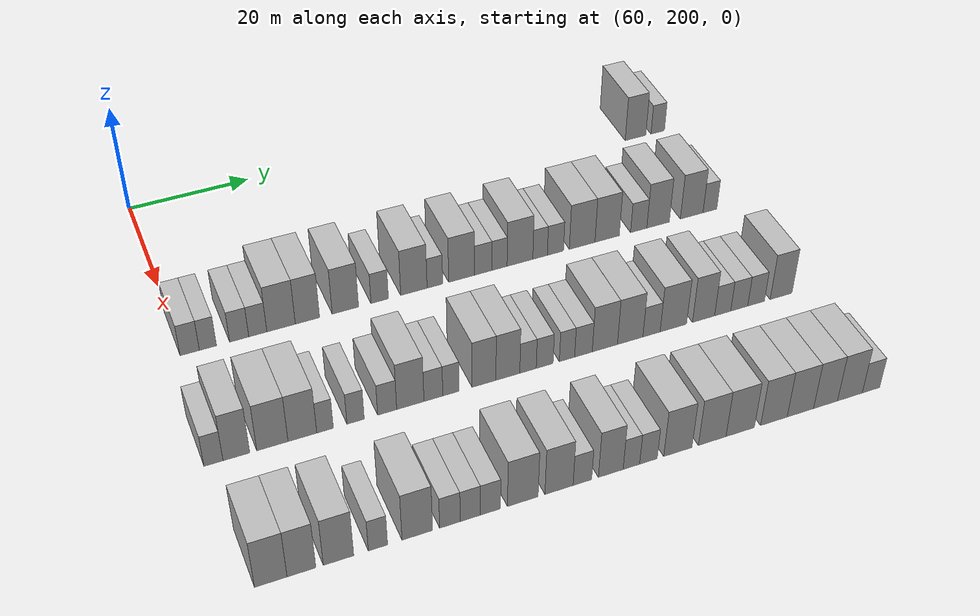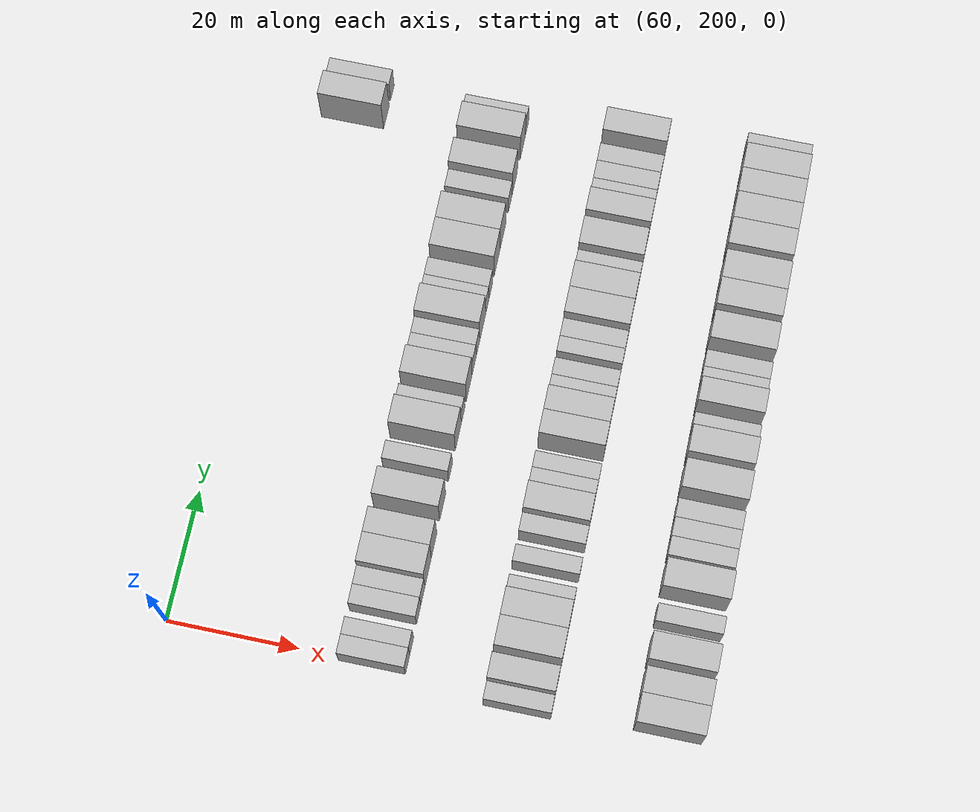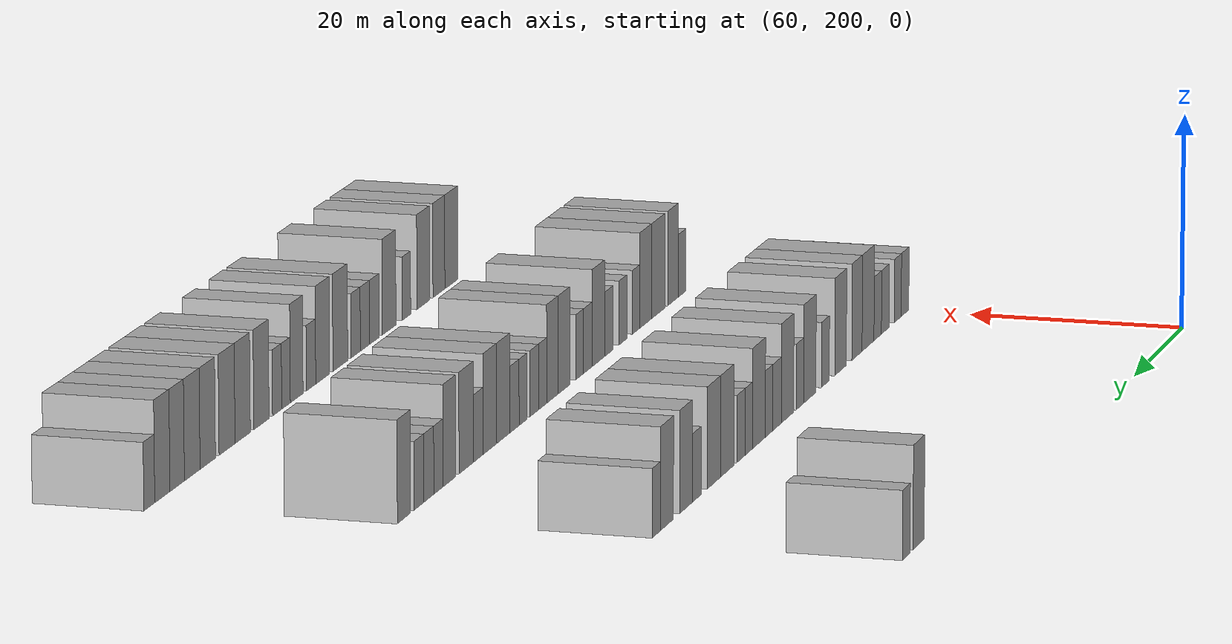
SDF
<sdf version="1.6">
 <world name="default">
  <model name="building_559">
   <static>1</static>
   <pose>69.0000 284.7594 0 0.000000 0.000000 0.000000</pose>
   <link name="link">
    <pose>0 0 4.50 0 0 0</pose>
    <collision name="collision"><geometry><box><size>10.0000 3.9321 9.0000</size></box></geometry></collision>
    <visual name="visual">
     <cast_shadows>0</cast_shadows>
     <geometry><box><size>10.0000 3.9321 9.0000</size></box></geometry>
     <material>
      <script>
       <uri>model://HANNAS_wall/materials/scripts</uri>
       <uri>model://HANNAS_wall/materials/textures</uri>
       <name>vrc/HANNAS_wall</name>
      </script>
     </material>
    </visual>
   </link>
  </model>
  <model name="building_560">
   <static>1</static>
   <pose>69.0000 289.0182 0 0.000000 0.000000 0.000000</pose>
   <link name="link">
    <pose>0 0 3.00 0 0 0</pose>
    <collision name="collision"><geometry><box><size>10.0000 2.5855 6.0000</size></box></geometry></collision>
    <visual name="visual">
     <cast_shadows>0</cast_shadows>
     <geometry><box><size>10.0000 2.5855 6.0000</size></box></geometry>
     <material>
      <script>
       <uri>model://HANNAS_wall/materials/scripts</uri>
       <uri>model://HANNAS_wall/materials/textures</uri>
       <name>vrc/HANNAS_wall</name>
      </script>
     </material>
    </visual>
   </link>
  </model>
  <model name="building_737">
   <static>1</static>
   <pose>91.0000 201.0022 0 0.000000 0.000000 0.000000</pose>
   <link name="link">
    <pose>0 0 3.00 0 0 0</pose>
    <collision name="collision"><geometry><box><size>10.0000 2.9094 6.0000</size></box></geometry></collision>
    <visual name="visual">
     <cast_shadows>0</cast_shadows>
     <geometry><box><size>10.0000 2.9094 6.0000</size></box></geometry>
     <material>
      <script>
       <uri>model://HANNAS_wall/materials/scripts</uri>
       <uri>model://HANNAS_wall/materials/textures</uri>
       <name>vrc/HANNAS_wall</name>
      </script>
     </material>
    </visual>
   </link>
  </model>
  <model name="building_738">
   <static>1</static>
   <pose>91.0000 203.7476 0 0.000000 0.000000 0.000000</pose>
   <link name="link">
    <pose>0 0 3.00 0 0 0</pose>
    <collision name="collision"><geometry><box><size>10.0000 2.5815 6.0000</size></box></geometry></collision>
    <visual name="visual">
     <cast_shadows>0</cast_shadows>
     <geometry><box><size>10.0000 2.5815 6.0000</size></box></geometry>
     <material>
      <script>
       <uri>model://HANNAS_wall/materials/scripts</uri>
       <uri>model://HANNAS_wall/materials/textures</uri>
       <name>vrc/HANNAS_wall</name>
      </script>
     </material>
    </visual>
   </link>
  </model>
  <model name="building_739">
   <static>1</static>
   <pose>91.0000 208.5044 0 0.000000 0.000000 0.000000</pose>
   <link name="link">
    <pose>0 0 3.00 0 0 0</pose>
    <collision name="collision"><geometry><box><size>10.0000 2.9321 6.0000</size></box></geometry></collision>
    <visual name="visual">
     <cast_shadows>0</cast_shadows>
     <geometry><box><size>10.0000 2.9321 6.0000</size></box></geometry>
     <material>
      <script>
       <uri>model://HANNAS_wall/materials/scripts</uri>
       <uri>model://HANNAS_wall/materials/textures</uri>
       <name>vrc/HANNAS_wall</name>
      </script>
     </material>
    </visual>
   </link>
  </model>
  <model name="building_740">
   <static>1</static>
   <pose>91.0000 211.3655 0 0.000000 0.000000 0.000000</pose>
   <link name="link">
    <pose>0 0 3.00 0 0 0</pose>
    <collision name="collision"><geometry><box><size>10.0000 2.7901 6.0000</size></box></geometry></collision>
    <visual name="visual">
     <cast_shadows>0</cast_shadows>
     <geometry><box><size>10.0000 2.7901 6.0000</size></box></geometry>
     <material>
      <script>
       <uri>model://HANNAS_wall/materials/scripts</uri>
       <uri>model://HANNAS_wall/materials/textures</uri>
       <name>vrc/HANNAS_wall</name>
      </script>
     </material>
    </visual>
   </link>
  </model>
  <model name="building_741">
   <static>1</static>
   <pose>91.0000 214.9728 0 0.000000 0.000000 0.000000</pose>
   <link name="link">
    <pose>0 0 4.50 0 0 0</pose>
    <collision name="collision"><geometry><box><size>10.0000 4.4246 9.0000</size></box></geometry></collision>
    <visual name="visual">
     <cast_shadows>0</cast_shadows>
     <geometry><box><size>10.0000 4.4246 9.0000</size></box></geometry>
     <material>
      <script>
       <uri>model://HANNAS_wall/materials/scripts</uri>
       <uri>model://HANNAS_wall/materials/textures</uri>
       <name>vrc/HANNAS_wall</name>
      </script>
     </material>
    </visual>
   </link>
  </model>
  <model name="building_742">
   <static>1</static>
   <pose>91.0000 219.0837 0 0.000000 0.000000 0.000000</pose>
   <link name="link">
    <pose>0 0 4.50 0 0 0</pose>
    <collision name="collision"><geometry><box><size>10.0000 3.7972 9.0000</size></box></geometry></collision>
    <visual name="visual">
     <cast_shadows>0</cast_shadows>
     <geometry><box><size>10.0000 3.7972 9.0000</size></box></geometry>
     <material>
      <script>
       <uri>model://HANNAS_wall/materials/scripts</uri>
       <uri>model://HANNAS_wall/materials/textures</uri>
       <name>vrc/HANNAS_wall</name>
      </script>
     </material>
    </visual>
   </link>
  </model>
  <model name="building_743">
   <static>1</static>
   <pose>91.0000 225.0781 0 0.000000 0.000000 0.000000</pose>
   <link name="link">
    <pose>0 0 4.50 0 0 0</pose>
    <collision name="collision"><geometry><box><size>10.0000 4.1915 9.0000</size></box></geometry></collision>
    <visual name="visual">
     <cast_shadows>0</cast_shadows>
     <geometry><box><size>10.0000 4.1915 9.0000</size></box></geometry>
     <material>
      <script>
       <uri>model://HANNAS_wall/materials/scripts</uri>
       <uri>model://HANNAS_wall/materials/textures</uri>
       <name>vrc/HANNAS_wall</name>
      </script>
     </material>
    </visual>
   </link>
  </model>
  <model name="building_744">
   <static>1</static>
   <pose>91.0000 230.5742 0 0.000000 0.000000 0.000000</pose>
   <link name="link">
    <pose>0 0 3.00 0 0 0</pose>
    <collision name="collision"><geometry><box><size>10.0000 2.8008 6.0000</size></box></geometry></collision>
    <visual name="visual">
     <cast_shadows>0</cast_shadows>
     <geometry><box><size>10.0000 2.8008 6.0000</size></box></geometry>
     <material>
      <script>
       <uri>model://HANNAS_wall/materials/scripts</uri>
       <uri>model://HANNAS_wall/materials/textures</uri>
       <name>vrc/HANNAS_wall</name>
      </script>
     </material>
    </visual>
   </link>
  </model>
  <model name="building_745">
   <static>1</static>
   <pose>91.0000 236.1287 0 0.000000 0.000000 0.000000</pose>
   <link name="link">
    <pose>0 0 4.50 0 0 0</pose>
    <collision name="collision"><geometry><box><size>10.0000 4.3082 9.0000</size></box></geometry></collision>
    <visual name="visual">
     <cast_shadows>0</cast_shadows>
     <geometry><box><size>10.0000 4.3082 9.0000</size></box></geometry>
     <material>
      <script>
       <uri>model://HANNAS_wall/materials/scripts</uri>
       <uri>model://HANNAS_wall/materials/textures</uri>
       <name>vrc/HANNAS_wall</name>
      </script>
     </material>
    </visual>
   </link>
  </model>
  <model name="building_746">
   <static>1</static>
   <pose>91.0000 239.5628 0 0.000000 0.000000 0.000000</pose>
   <link name="link">
    <pose>0 0 3.00 0 0 0</pose>
    <collision name="collision"><geometry><box><size>10.0000 2.5600 6.0000</size></box></geometry></collision>
    <visual name="visual">
     <cast_shadows>0</cast_shadows>
     <geometry><box><size>10.0000 2.5600 6.0000</size></box></geometry>
     <material>
      <script>
       <uri>model://HANNAS_wall/materials/scripts</uri>
       <uri>model://HANNAS_wall/materials/textures</uri>
       <name>vrc/HANNAS_wall</name>
      </script>
     </material>
    </visual>
   </link>
  </model>
  <model name="building_747">
   <static>1</static>
   <pose>91.0000 243.9823 0 0.000000 0.000000 0.000000</pose>
   <link name="link">
    <pose>0 0 4.50 0 0 0</pose>
    <collision name="collision"><geometry><box><size>10.0000 4.2789 9.0000</size></box></geometry></collision>
    <visual name="visual">
     <cast_shadows>0</cast_shadows>
     <geometry><box><size>10.0000 4.2789 9.0000</size></box></geometry>
     <material>
      <script>
       <uri>model://HANNAS_wall/materials/scripts</uri>
       <uri>model://HANNAS_wall/materials/textures</uri>
       <name>vrc/HANNAS_wall</name>
      </script>
     </material>
    </visual>
   </link>
  </model>
  <model name="building_748">
   <static>1</static>
   <pose>91.0000 247.5914 0 0.000000 0.000000 0.000000</pose>
   <link name="link">
    <pose>0 0 3.00 0 0 0</pose>
    <collision name="collision"><geometry><box><size>10.0000 2.9393 6.0000</size></box></geometry></collision>
    <visual name="visual">
     <cast_shadows>0</cast_shadows>
     <geometry><box><size>10.0000 2.9393 6.0000</size></box></geometry>
     <material>
      <script>
       <uri>model://HANNAS_wall/materials/scripts</uri>
       <uri>model://HANNAS_wall/materials/textures</uri>
       <name>vrc/HANNAS_wall</name>
      </script>
     </material>
    </visual>
   </link>
  </model>
  <model name="building_749">
   <static>1</static>
   <pose>91.0000 250.3411 0 0.000000 0.000000 0.000000</pose>
   <link name="link">
    <pose>0 0 3.00 0 0 0</pose>
    <collision name="collision"><geometry><box><size>10.0000 2.5601 6.0000</size></box></geometry></collision>
    <visual name="visual">
     <cast_shadows>0</cast_shadows>
     <geometry><box><size>10.0000 2.5601 6.0000</size></box></geometry>
     <material>
      <script>
       <uri>model://HANNAS_wall/materials/scripts</uri>
       <uri>model://HANNAS_wall/materials/textures</uri>
       <name>vrc/HANNAS_wall</name>
      </script>
     </material>
    </visual>
   </link>
  </model>
  <model name="building_750">
   <static>1</static>
   <pose>91.0000 253.8123 0 0.000000 0.000000 0.000000</pose>
   <link name="link">
    <pose>0 0 4.50 0 0 0</pose>
    <collision name="collision"><geometry><box><size>10.0000 4.3824 9.0000</size></box></geometry></collision>
    <visual name="visual">
     <cast_shadows>0</cast_shadows>
     <geometry><box><size>10.0000 4.3824 9.0000</size></box></geometry>
     <material>
      <script>
       <uri>model://HANNAS_wall/materials/scripts</uri>
       <uri>model://HANNAS_wall/materials/textures</uri>
       <name>vrc/HANNAS_wall</name>
      </script>
     </material>
    </visual>
   </link>
  </model>
  <model name="building_751">
   <static>1</static>
   <pose>91.0000 257.2460 0 0.000000 0.000000 0.000000</pose>
   <link name="link">
    <pose>0 0 3.00 0 0 0</pose>
    <collision name="collision"><geometry><box><size>10.0000 2.4849 6.0000</size></box></geometry></collision>
    <visual name="visual">
     <cast_shadows>0</cast_shadows>
     <geometry><box><size>10.0000 2.4849 6.0000</size></box></geometry>
     <material>
      <script>
       <uri>model://HANNAS_wall/materials/scripts</uri>
       <uri>model://HANNAS_wall/materials/textures</uri>
       <name>vrc/HANNAS_wall</name>
      </script>
     </material>
    </visual>
   </link>
  </model>
  <model name="building_752">
   <static>1</static>
   <pose>91.0000 259.8829 0 0.000000 0.000000 0.000000</pose>
   <link name="link">
    <pose>0 0 3.00 0 0 0</pose>
    <collision name="collision"><geometry><box><size>10.0000 2.7890 6.0000</size></box></geometry></collision>
    <visual name="visual">
     <cast_shadows>0</cast_shadows>
     <geometry><box><size>10.0000 2.7890 6.0000</size></box></geometry>
     <material>
      <script>
       <uri>model://HANNAS_wall/materials/scripts</uri>
       <uri>model://HANNAS_wall/materials/textures</uri>
       <name>vrc/HANNAS_wall</name>
      </script>
     </material>
    </visual>
   </link>
  </model>
  <model name="building_753">
   <static>1</static>
   <pose>91.0000 264.5177 0 0.000000 0.000000 0.000000</pose>
   <link name="link">
    <pose>0 0 4.50 0 0 0</pose>
    <collision name="collision"><geometry><box><size>10.0000 4.4805 9.0000</size></box></geometry></collision>
    <visual name="visual">
     <cast_shadows>0</cast_shadows>
     <geometry><box><size>10.0000 4.4805 9.0000</size></box></geometry>
     <material>
      <script>
       <uri>model://HANNAS_wall/materials/scripts</uri>
       <uri>model://HANNAS_wall/materials/textures</uri>
       <name>vrc/HANNAS_wall</name>
      </script>
     </material>
    </visual>
   </link>
  </model>
  <model name="building_754">
   <static>1</static>
   <pose>91.0000 268.8987 0 0.000000 0.000000 0.000000</pose>
   <link name="link">
    <pose>0 0 4.50 0 0 0</pose>
    <collision name="collision"><geometry><box><size>10.0000 4.2816 9.0000</size></box></geometry></collision>
    <visual name="visual">
     <cast_shadows>0</cast_shadows>
     <geometry><box><size>10.0000 4.2816 9.0000</size></box></geometry>
     <material>
      <script>
       <uri>model://HANNAS_wall/materials/scripts</uri>
       <uri>model://HANNAS_wall/materials/textures</uri>
       <name>vrc/HANNAS_wall</name>
      </script>
     </material>
    </visual>
   </link>
  </model>
  <model name="building_755">
   <static>1</static>
   <pose>91.0000 274.4918 0 0.000000 0.000000 0.000000</pose>
   <link name="link">
    <pose>0 0 3.00 0 0 0</pose>
    <collision name="collision"><geometry><box><size>10.0000 2.9046 6.0000</size></box></geometry></collision>
    <visual name="visual">
     <cast_shadows>0</cast_shadows>
     <geometry><box><size>10.0000 2.9046 6.0000</size></box></geometry>
     <material>
      <script>
       <uri>model://HANNAS_wall/materials/scripts</uri>
       <uri>model://HANNAS_wall/materials/textures</uri>
       <name>vrc/HANNAS_wall</name>
      </script>
     </material>
    </visual>
   </link>
  </model>
  <model name="building_756">
   <static>1</static>
   <pose>91.0000 277.9613 0 0.000000 0.000000 0.000000</pose>
   <link name="link">
    <pose>0 0 4.50 0 0 0</pose>
    <collision name="collision"><geometry><box><size>10.0000 4.0344 9.0000</size></box></geometry></collision>
    <visual name="visual">
     <cast_shadows>0</cast_shadows>
     <geometry><box><size>10.0000 4.0344 9.0000</size></box></geometry>
     <material>
      <script>
       <uri>model://HANNAS_wall/materials/scripts</uri>
       <uri>model://HANNAS_wall/materials/textures</uri>
       <name>vrc/HANNAS_wall</name>
      </script>
     </material>
    </visual>
   </link>
  </model>
  <model name="building_757">
   <static>1</static>
   <pose>91.0000 284.0430 0 0.000000 0.000000 0.000000</pose>
   <link name="link">
    <pose>0 0 4.50 0 0 0</pose>
    <collision name="collision"><geometry><box><size>10.0000 4.1288 9.0000</size></box></geometry></collision>
    <visual name="visual">
     <cast_shadows>0</cast_shadows>
     <geometry><box><size>10.0000 4.1288 9.0000</size></box></geometry>
     <material>
      <script>
       <uri>model://HANNAS_wall/materials/scripts</uri>
       <uri>model://HANNAS_wall/materials/textures</uri>
       <name>vrc/HANNAS_wall</name>
      </script>
     </material>
    </visual>
   </link>
  </model>
  <model name="building_758">
   <static>1</static>
   <pose>91.0000 287.3696 0 0.000000 0.000000 0.000000</pose>
   <link name="link">
    <pose>0 0 3.00 0 0 0</pose>
    <collision name="collision"><geometry><box><size>10.0000 2.5245 6.0000</size></box></geometry></collision>
    <visual name="visual">
     <cast_shadows>0</cast_shadows>
     <geometry><box><size>10.0000 2.5245 6.0000</size></box></geometry>
     <material>
      <script>
       <uri>model://HANNAS_wall/materials/scripts</uri>
       <uri>model://HANNAS_wall/materials/textures</uri>
       <name>vrc/HANNAS_wall</name>
      </script>
     </material>
    </visual>
   </link>
  </model>
  <model name="building_920">
   <static>1</static>
   <pose>113.0000 198.8032 0 0.000000 0.000000 0.000000</pose>
   <link name="link">
    <pose>0 0 3.00 0 0 0</pose>
    <collision name="collision"><geometry><box><size>10.0000 2.6819 6.0000</size></box></geometry></collision>
    <visual name="visual">
     <cast_shadows>0</cast_shadows>
     <geometry><box><size>10.0000 2.6819 6.0000</size></box></geometry>
     <material>
      <script>
       <uri>model://HANNAS_wall/materials/scripts</uri>
       <uri>model://HANNAS_wall/materials/textures</uri>
       <name>vrc/HANNAS_wall</name>
      </script>
     </material>
    </visual>
   </link>
  </model>
  <model name="building_921">
   <static>1</static>
   <pose>113.0000 202.0382 0 0.000000 0.000000 0.000000</pose>
   <link name="link">
    <pose>0 0 4.50 0 0 0</pose>
    <collision name="collision"><geometry><box><size>10.0000 3.7881 9.0000</size></box></geometry></collision>
    <visual name="visual">
     <cast_shadows>0</cast_shadows>
     <geometry><box><size>10.0000 3.7881 9.0000</size></box></geometry>
     <material>
      <script>
       <uri>model://HANNAS_wall/materials/scripts</uri>
       <uri>model://HANNAS_wall/materials/textures</uri>
       <name>vrc/HANNAS_wall</name>
      </script>
     </material>
    </visual>
   </link>
  </model>
  <model name="building_922">
   <static>1</static>
   <pose>113.0000 207.1808 0 0.000000 0.000000 0.000000</pose>
   <link name="link">
    <pose>0 0 4.50 0 0 0</pose>
    <collision name="collision"><geometry><box><size>10.0000 4.4973 9.0000</size></box></geometry></collision>
    <visual name="visual">
     <cast_shadows>0</cast_shadows>
     <geometry><box><size>10.0000 4.4973 9.0000</size></box></geometry>
     <material>
      <script>
       <uri>model://HANNAS_wall/materials/scripts</uri>
       <uri>model://HANNAS_wall/materials/textures</uri>
       <name>vrc/HANNAS_wall</name>
      </script>
     </material>
    </visual>
   </link>
  </model>
  <model name="building_923">
   <static>1</static>
   <pose>113.0000 211.5131 0 0.000000 0.000000 0.000000</pose>
   <link name="link">
    <pose>0 0 4.50 0 0 0</pose>
    <collision name="collision"><geometry><box><size>10.0000 4.1672 9.0000</size></box></geometry></collision>
    <visual name="visual">
     <cast_shadows>0</cast_shadows>
     <geometry><box><size>10.0000 4.1672 9.0000</size></box></geometry>
     <material>
      <script>
       <uri>model://HANNAS_wall/materials/scripts</uri>
       <uri>model://HANNAS_wall/materials/textures</uri>
       <name>vrc/HANNAS_wall</name>
      </script>
     </material>
    </visual>
   </link>
  </model>
  <model name="building_924">
   <static>1</static>
   <pose>113.0000 214.8110 0 0.000000 0.000000 0.000000</pose>
   <link name="link">
    <pose>0 0 3.00 0 0 0</pose>
    <collision name="collision"><geometry><box><size>10.0000 2.4287 6.0000</size></box></geometry></collision>
    <visual name="visual">
     <cast_shadows>0</cast_shadows>
     <geometry><box><size>10.0000 2.4287 6.0000</size></box></geometry>
     <material>
      <script>
       <uri>model://HANNAS_wall/materials/scripts</uri>
       <uri>model://HANNAS_wall/materials/textures</uri>
       <name>vrc/HANNAS_wall</name>
      </script>
     </material>
    </visual>
   </link>
  </model>
  <model name="building_925">
   <static>1</static>
   <pose>113.0000 219.3073 0 0.000000 0.000000 0.000000</pose>
   <link name="link">
    <pose>0 0 3.00 0 0 0</pose>
    <collision name="collision"><geometry><box><size>10.0000 2.5637 6.0000</size></box></geometry></collision>
    <visual name="visual">
     <cast_shadows>0</cast_shadows>
     <geometry><box><size>10.0000 2.5637 6.0000</size></box></geometry>
     <material>
      <script>
       <uri>model://HANNAS_wall/materials/scripts</uri>
       <uri>model://HANNAS_wall/materials/textures</uri>
       <name>vrc/HANNAS_wall</name>
      </script>
     </material>
    </visual>
   </link>
  </model>
  <model name="building_926">
   <static>1</static>
   <pose>113.0000 224.0138 0 0.000000 0.000000 0.000000</pose>
   <link name="link">
    <pose>0 0 3.00 0 0 0</pose>
    <collision name="collision"><geometry><box><size>10.0000 2.8494 6.0000</size></box></geometry></collision>
    <visual name="visual">
     <cast_shadows>0</cast_shadows>
     <geometry><box><size>10.0000 2.8494 6.0000</size></box></geometry>
     <material>
      <script>
       <uri>model://HANNAS_wall/materials/scripts</uri>
       <uri>model://HANNAS_wall/materials/textures</uri>
       <name>vrc/HANNAS_wall</name>
      </script>
     </material>
    </visual>
   </link>
  </model>
  <model name="building_927">
   <static>1</static>
   <pose>113.0000 227.5051 0 0.000000 0.000000 0.000000</pose>
   <link name="link">
    <pose>0 0 4.50 0 0 0</pose>
    <collision name="collision"><geometry><box><size>10.0000 4.1331 9.0000</size></box></geometry></collision>
    <visual name="visual">
     <cast_shadows>0</cast_shadows>
     <geometry><box><size>10.0000 4.1331 9.0000</size></box></geometry>
     <material>
      <script>
       <uri>model://HANNAS_wall/materials/scripts</uri>
       <uri>model://HANNAS_wall/materials/textures</uri>
       <name>vrc/HANNAS_wall</name>
      </script>
     </material>
    </visual>
   </link>
  </model>
  <model name="building_928">
   <static>1</static>
   <pose>113.0000 231.0036 0 0.000000 0.000000 0.000000</pose>
   <link name="link">
    <pose>0 0 3.00 0 0 0</pose>
    <collision name="collision"><geometry><box><size>10.0000 2.8640 6.0000</size></box></geometry></collision>
    <visual name="visual">
     <cast_shadows>0</cast_shadows>
     <geometry><box><size>10.0000 2.8640 6.0000</size></box></geometry>
     <material>
      <script>
       <uri>model://HANNAS_wall/materials/scripts</uri>
       <uri>model://HANNAS_wall/materials/textures</uri>
       <name>vrc/HANNAS_wall</name>
      </script>
     </material>
    </visual>
   </link>
  </model>
  <model name="building_929">
   <static>1</static>
   <pose>113.0000 233.6943 0 0.000000 0.000000 0.000000</pose>
   <link name="link">
    <pose>0 0 3.00 0 0 0</pose>
    <collision name="collision"><geometry><box><size>10.0000 2.5174 6.0000</size></box></geometry></collision>
    <visual name="visual">
     <cast_shadows>0</cast_shadows>
     <geometry><box><size>10.0000 2.5174 6.0000</size></box></geometry>
     <material>
      <script>
       <uri>model://HANNAS_wall/materials/scripts</uri>
       <uri>model://HANNAS_wall/materials/textures</uri>
       <name>vrc/HANNAS_wall</name>
      </script>
     </material>
    </visual>
   </link>
  </model>
  <model name="building_930">
   <static>1</static>
   <pose>113.0000 238.8066 0 0.000000 0.000000 0.000000</pose>
   <link name="link">
    <pose>0 0 4.50 0 0 0</pose>
    <collision name="collision"><geometry><box><size>10.0000 3.7071 9.0000</size></box></geometry></collision>
    <visual name="visual">
     <cast_shadows>0</cast_shadows>
     <geometry><box><size>10.0000 3.7071 9.0000</size></box></geometry>
     <material>
      <script>
       <uri>model://HANNAS_wall/materials/scripts</uri>
       <uri>model://HANNAS_wall/materials/textures</uri>
       <name>vrc/HANNAS_wall</name>
      </script>
     </material>
    </visual>
   </link>
  </model>
  <model name="building_931">
   <static>1</static>
   <pose>113.0000 242.5376 0 0.000000 0.000000 0.000000</pose>
   <link name="link">
    <pose>0 0 4.50 0 0 0</pose>
    <collision name="collision"><geometry><box><size>10.0000 3.7550 9.0000</size></box></geometry></collision>
    <visual name="visual">
     <cast_shadows>0</cast_shadows>
     <geometry><box><size>10.0000 3.7550 9.0000</size></box></geometry>
     <material>
      <script>
       <uri>model://HANNAS_wall/materials/scripts</uri>
       <uri>model://HANNAS_wall/materials/textures</uri>
       <name>vrc/HANNAS_wall</name>
      </script>
     </material>
    </visual>
   </link>
  </model>
  <model name="building_932">
   <static>1</static>
   <pose>113.0000 245.7138 0 0.000000 0.000000 0.000000</pose>
   <link name="link">
    <pose>0 0 3.00 0 0 0</pose>
    <collision name="collision"><geometry><box><size>10.0000 2.5974 6.0000</size></box></geometry></collision>
    <visual name="visual">
     <cast_shadows>0</cast_shadows>
     <geometry><box><size>10.0000 2.5974 6.0000</size></box></geometry>
     <material>
      <script>
       <uri>model://HANNAS_wall/materials/scripts</uri>
       <uri>model://HANNAS_wall/materials/textures</uri>
       <name>vrc/HANNAS_wall</name>
      </script>
     </material>
    </visual>
   </link>
  </model>
  <model name="building_933">
   <static>1</static>
   <pose>113.0000 248.3528 0 0.000000 0.000000 0.000000</pose>
   <link name="link">
    <pose>0 0 3.00 0 0 0</pose>
    <collision name="collision"><geometry><box><size>10.0000 2.6806 6.0000</size></box></geometry></collision>
    <visual name="visual">
     <cast_shadows>0</cast_shadows>
     <geometry><box><size>10.0000 2.6806 6.0000</size></box></geometry>
     <material>
      <script>
       <uri>model://HANNAS_wall/materials/scripts</uri>
       <uri>model://HANNAS_wall/materials/textures</uri>
       <name>vrc/HANNAS_wall</name>
      </script>
     </material>
    </visual>
   </link>
  </model>
  <model name="building_934">
   <static>1</static>
   <pose>113.0000 251.9249 0 0.000000 0.000000 0.000000</pose>
   <link name="link">
    <pose>0 0 3.00 0 0 0</pose>
    <collision name="collision"><geometry><box><size>10.0000 2.4638 6.0000</size></box></geometry></collision>
    <visual name="visual">
     <cast_shadows>0</cast_shadows>
     <geometry><box><size>10.0000 2.4638 6.0000</size></box></geometry>
     <material>
      <script>
       <uri>model://HANNAS_wall/materials/scripts</uri>
       <uri>model://HANNAS_wall/materials/textures</uri>
       <name>vrc/HANNAS_wall</name>
      </script>
     </material>
    </visual>
   </link>
  </model>
  <model name="building_935">
   <static>1</static>
   <pose>113.0000 254.5799 0 0.000000 0.000000 0.000000</pose>
   <link name="link">
    <pose>0 0 3.00 0 0 0</pose>
    <collision name="collision"><geometry><box><size>10.0000 2.8462 6.0000</size></box></geometry></collision>
    <visual name="visual">
     <cast_shadows>0</cast_shadows>
     <geometry><box><size>10.0000 2.8462 6.0000</size></box></geometry>
     <material>
      <script>
       <uri>model://HANNAS_wall/materials/scripts</uri>
       <uri>model://HANNAS_wall/materials/textures</uri>
       <name>vrc/HANNAS_wall</name>
      </script>
     </material>
    </visual>
   </link>
  </model>
  <model name="building_936">
   <static>1</static>
   <pose>113.0000 258.0589 0 0.000000 0.000000 0.000000</pose>
   <link name="link">
    <pose>0 0 4.50 0 0 0</pose>
    <collision name="collision"><geometry><box><size>10.0000 4.1116 9.0000</size></box></geometry></collision>
    <visual name="visual">
     <cast_shadows>0</cast_shadows>
     <geometry><box><size>10.0000 4.1116 9.0000</size></box></geometry>
     <material>
      <script>
       <uri>model://HANNAS_wall/materials/scripts</uri>
       <uri>model://HANNAS_wall/materials/textures</uri>
       <name>vrc/HANNAS_wall</name>
      </script>
     </material>
    </visual>
   </link>
  </model>
  <model name="building_937">
   <static>1</static>
   <pose>113.0000 262.2113 0 0.000000 0.000000 0.000000</pose>
   <link name="link">
    <pose>0 0 4.50 0 0 0</pose>
    <collision name="collision"><geometry><box><size>10.0000 4.1931 9.0000</size></box></geometry></collision>
    <visual name="visual">
     <cast_shadows>0</cast_shadows>
     <geometry><box><size>10.0000 4.1931 9.0000</size></box></geometry>
     <material>
      <script>
       <uri>model://HANNAS_wall/materials/scripts</uri>
       <uri>model://HANNAS_wall/materials/textures</uri>
       <name>vrc/HANNAS_wall</name>
      </script>
     </material>
    </visual>
   </link>
  </model>
  <model name="building_938">
   <static>1</static>
   <pose>113.0000 265.7371 0 0.000000 0.000000 0.000000</pose>
   <link name="link">
    <pose>0 0 3.00 0 0 0</pose>
    <collision name="collision"><geometry><box><size>10.0000 2.8586 6.0000</size></box></geometry></collision>
    <visual name="visual">
     <cast_shadows>0</cast_shadows>
     <geometry><box><size>10.0000 2.8586 6.0000</size></box></geometry>
     <material>
      <script>
       <uri>model://HANNAS_wall/materials/scripts</uri>
       <uri>model://HANNAS_wall/materials/textures</uri>
       <name>vrc/HANNAS_wall</name>
      </script>
     </material>
    </visual>
   </link>
  </model>
  <model name="building_939">
   <static>1</static>
   <pose>113.0000 269.3833 0 0.000000 0.000000 0.000000</pose>
   <link name="link">
    <pose>0 0 4.50 0 0 0</pose>
    <collision name="collision"><geometry><box><size>10.0000 4.4338 9.0000</size></box></geometry></collision>
    <visual name="visual">
     <cast_shadows>0</cast_shadows>
     <geometry><box><size>10.0000 4.4338 9.0000</size></box></geometry>
     <material>
      <script>
       <uri>model://HANNAS_wall/materials/scripts</uri>
       <uri>model://HANNAS_wall/materials/textures</uri>
       <name>vrc/HANNAS_wall</name>
      </script>
     </material>
    </visual>
   </link>
  </model>
  <model name="building_940">
   <static>1</static>
   <pose>113.0000 274.4802 0 0.000000 0.000000 0.000000</pose>
   <link name="link">
    <pose>0 0 4.50 0 0 0</pose>
    <collision name="collision"><geometry><box><size>10.0000 3.7599 9.0000</size></box></geometry></collision>
    <visual name="visual">
     <cast_shadows>0</cast_shadows>
     <geometry><box><size>10.0000 3.7599 9.0000</size></box></geometry>
     <material>
      <script>
       <uri>model://HANNAS_wall/materials/scripts</uri>
       <uri>model://HANNAS_wall/materials/textures</uri>
       <name>vrc/HANNAS_wall</name>
      </script>
     </material>
    </visual>
   </link>
  </model>
  <model name="building_941">
   <static>1</static>
   <pose>113.0000 277.7319 0 0.000000 0.000000 0.000000</pose>
   <link name="link">
    <pose>0 0 3.00 0 0 0</pose>
    <collision name="collision"><geometry><box><size>10.0000 2.7435 6.0000</size></box></geometry></collision>
    <visual name="visual">
     <cast_shadows>0</cast_shadows>
     <geometry><box><size>10.0000 2.7435 6.0000</size></box></geometry>
     <material>
      <script>
       <uri>model://HANNAS_wall/materials/scripts</uri>
       <uri>model://HANNAS_wall/materials/textures</uri>
       <name>vrc/HANNAS_wall</name>
      </script>
     </material>
    </visual>
   </link>
  </model>
  <model name="building_942">
   <static>1</static>
   <pose>113.0000 280.5706 0 0.000000 0.000000 0.000000</pose>
   <link name="link">
    <pose>0 0 3.00 0 0 0</pose>
    <collision name="collision"><geometry><box><size>10.0000 2.9338 6.0000</size></box></geometry></collision>
    <visual name="visual">
     <cast_shadows>0</cast_shadows>
     <geometry><box><size>10.0000 2.9338 6.0000</size></box></geometry>
     <material>
      <script>
       <uri>model://HANNAS_wall/materials/scripts</uri>
       <uri>model://HANNAS_wall/materials/textures</uri>
       <name>vrc/HANNAS_wall</name>
      </script>
     </material>
    </visual>
   </link>
  </model>
  <model name="building_943">
   <static>1</static>
   <pose>113.0000 283.4804 0 0.000000 0.000000 0.000000</pose>
   <link name="link">
    <pose>0 0 3.00 0 0 0</pose>
    <collision name="collision"><geometry><box><size>10.0000 2.8859 6.0000</size></box></geometry></collision>
    <visual name="visual">
     <cast_shadows>0</cast_shadows>
     <geometry><box><size>10.0000 2.8859 6.0000</size></box></geometry>
     <material>
      <script>
       <uri>model://HANNAS_wall/materials/scripts</uri>
       <uri>model://HANNAS_wall/materials/textures</uri>
       <name>vrc/HANNAS_wall</name>
      </script>
     </material>
    </visual>
   </link>
  </model>
  <model name="building_944">
   <static>1</static>
   <pose>113.0000 287.8372 0 0.000000 0.000000 0.000000</pose>
   <link name="link">
    <pose>0 0 4.50 0 0 0</pose>
    <collision name="collision"><geometry><box><size>10.0000 3.8276 9.0000</size></box></geometry></collision>
    <visual name="visual">
     <cast_shadows>0</cast_shadows>
     <geometry><box><size>10.0000 3.8276 9.0000</size></box></geometry>
     <material>
      <script>
       <uri>model://HANNAS_wall/materials/scripts</uri>
       <uri>model://HANNAS_wall/materials/textures</uri>
       <name>vrc/HANNAS_wall</name>
      </script>
     </material>
    </visual>
   </link>
  </model>
  <model name="building_1099">
   <static>1</static>
   <pose>135.0000 200.5108 0 0.000000 0.000000 0.000000</pose>
   <link name="link">
    <pose>0 0 4.50 0 0 0</pose>
    <collision name="collision"><geometry><box><size>10.0000 4.3170 9.0000</size></box></geometry></collision>
    <visual name="visual">
     <cast_shadows>0</cast_shadows>
     <geometry><box><size>10.0000 4.3170 9.0000</size></box></geometry>
     <material>
      <script>
       <uri>model://HANNAS_wall/materials/scripts</uri>
       <uri>model://HANNAS_wall/materials/textures</uri>
       <name>vrc/HANNAS_wall</name>
      </script>
     </material>
    </visual>
   </link>
  </model>
  <model name="building_1100">
   <static>1</static>
   <pose>135.0000 204.5979 0 0.000000 0.000000 0.000000</pose>
   <link name="link">
    <pose>0 0 4.50 0 0 0</pose>
    <collision name="collision"><geometry><box><size>10.0000 3.8573 9.0000</size></box></geometry></collision>
    <visual name="visual">
     <cast_shadows>0</cast_shadows>
     <geometry><box><size>10.0000 3.8573 9.0000</size></box></geometry>
     <material>
      <script>
       <uri>model://HANNAS_wall/materials/scripts</uri>
       <uri>model://HANNAS_wall/materials/textures</uri>
       <name>vrc/HANNAS_wall</name>
      </script>
     </material>
    </visual>
   </link>
  </model>
  <model name="building_1101">
   <static>1</static>
   <pose>135.0000 209.5909 0 0.000000 0.000000 0.000000</pose>
   <link name="link">
    <pose>0 0 4.50 0 0 0</pose>
    <collision name="collision"><geometry><box><size>10.0000 4.1285 9.0000</size></box></geometry></collision>
    <visual name="visual">
     <cast_shadows>0</cast_shadows>
     <geometry><box><size>10.0000 4.1285 9.0000</size></box></geometry>
     <material>
      <script>
       <uri>model://HANNAS_wall/materials/scripts</uri>
       <uri>model://HANNAS_wall/materials/textures</uri>
       <name>vrc/HANNAS_wall</name>
      </script>
     </material>
    </visual>
   </link>
  </model>
  <model name="building_1102">
   <static>1</static>
   <pose>135.0000 214.9796 0 0.000000 0.000000 0.000000</pose>
   <link name="link">
    <pose>0 0 3.00 0 0 0</pose>
    <collision name="collision"><geometry><box><size>10.0000 2.6490 6.0000</size></box></geometry></collision>
    <visual name="visual">
     <cast_shadows>0</cast_shadows>
     <geometry><box><size>10.0000 2.6490 6.0000</size></box></geometry>
     <material>
      <script>
       <uri>model://HANNAS_wall/materials/scripts</uri>
       <uri>model://HANNAS_wall/materials/textures</uri>
       <name>vrc/HANNAS_wall</name>
      </script>
     </material>
    </visual>
   </link>
  </model>
  <model name="building_1103">
   <static>1</static>
   <pose>135.0000 220.4351 0 0.000000 0.000000 0.000000</pose>
   <link name="link">
    <pose>0 0 4.50 0 0 0</pose>
    <collision name="collision"><geometry><box><size>10.0000 4.2619 9.0000</size></box></geometry></collision>
    <visual name="visual">
     <cast_shadows>0</cast_shadows>
     <geometry><box><size>10.0000 4.2619 9.0000</size></box></geometry>
     <material>
      <script>
       <uri>model://HANNAS_wall/materials/scripts</uri>
       <uri>model://HANNAS_wall/materials/textures</uri>
       <name>vrc/HANNAS_wall</name>
      </script>
     </material>
    </visual>
   </link>
  </model>
  <model name="building_1104">
   <static>1</static>
   <pose>135.0000 225.0232 0 0.000000 0.000000 0.000000</pose>
   <link name="link">
    <pose>0 0 3.00 0 0 0</pose>
    <collision name="collision"><geometry><box><size>10.0000 2.9143 6.0000</size></box></geometry></collision>
    <visual name="visual">
     <cast_shadows>0</cast_shadows>
     <geometry><box><size>10.0000 2.9143 6.0000</size></box></geometry>
     <material>
      <script>
       <uri>model://HANNAS_wall/materials/scripts</uri>
       <uri>model://HANNAS_wall/materials/textures</uri>
       <name>vrc/HANNAS_wall</name>
      </script>
     </material>
    </visual>
   </link>
  </model>
  <model name="building_1105">
   <static>1</static>
   <pose>135.0000 227.9264 0 0.000000 0.000000 0.000000</pose>
   <link name="link">
    <pose>0 0 3.00 0 0 0</pose>
    <collision name="collision"><geometry><box><size>10.0000 2.8922 6.0000</size></box></geometry></collision>
    <visual name="visual">
     <cast_shadows>0</cast_shadows>
     <geometry><box><size>10.0000 2.8922 6.0000</size></box></geometry>
     <material>
      <script>
       <uri>model://HANNAS_wall/materials/scripts</uri>
       <uri>model://HANNAS_wall/materials/textures</uri>
       <name>vrc/HANNAS_wall</name>
      </script>
     </material>
    </visual>
   </link>
  </model>
  <model name="building_1106">
   <static>1</static>
   <pose>135.0000 230.8103 0 0.000000 0.000000 0.000000</pose>
   <link name="link">
    <pose>0 0 3.00 0 0 0</pose>
    <collision name="collision"><geometry><box><size>10.0000 2.8757 6.0000</size></box></geometry></collision>
    <visual name="visual">
     <cast_shadows>0</cast_shadows>
     <geometry><box><size>10.0000 2.8757 6.0000</size></box></geometry>
     <material>
      <script>
       <uri>model://HANNAS_wall/materials/scripts</uri>
       <uri>model://HANNAS_wall/materials/textures</uri>
       <name>vrc/HANNAS_wall</name>
      </script>
     </material>
    </visual>
   </link>
  </model>
  <model name="building_1107">
   <static>1</static>
   <pose>135.0000 235.4796 0 0.000000 0.000000 0.000000</pose>
   <link name="link">
    <pose>0 0 4.50 0 0 0</pose>
    <collision name="collision"><geometry><box><size>10.0000 4.4630 9.0000</size></box></geometry></collision>
    <visual name="visual">
     <cast_shadows>0</cast_shadows>
     <geometry><box><size>10.0000 4.4630 9.0000</size></box></geometry>
     <material>
      <script>
       <uri>model://HANNAS_wall/materials/scripts</uri>
       <uri>model://HANNAS_wall/materials/textures</uri>
       <name>vrc/HANNAS_wall</name>
      </script>
     </material>
    </visual>
   </link>
  </model>
  <model name="building_1108">
   <static>1</static>
   <pose>135.0000 240.7908 0 0.000000 0.000000 0.000000</pose>
   <link name="link">
    <pose>0 0 4.50 0 0 0</pose>
    <collision name="collision"><geometry><box><size>10.0000 4.1593 9.0000</size></box></geometry></collision>
    <visual name="visual">
     <cast_shadows>0</cast_shadows>
     <geometry><box><size>10.0000 4.1593 9.0000</size></box></geometry>
     <material>
      <script>
       <uri>model://HANNAS_wall/materials/scripts</uri>
       <uri>model://HANNAS_wall/materials/textures</uri>
       <name>vrc/HANNAS_wall</name>
      </script>
     </material>
    </visual>
   </link>
  </model>
  <model name="building_1109">
   <static>1</static>
   <pose>135.0000 244.2562 0 0.000000 0.000000 0.000000</pose>
   <link name="link">
    <pose>0 0 3.00 0 0 0</pose>
    <collision name="collision"><geometry><box><size>10.0000 2.7716 6.0000</size></box></geometry></collision>
    <visual name="visual">
     <cast_shadows>0</cast_shadows>
     <geometry><box><size>10.0000 2.7716 6.0000</size></box></geometry>
     <material>
      <script>
       <uri>model://HANNAS_wall/materials/scripts</uri>
       <uri>model://HANNAS_wall/materials/textures</uri>
       <name>vrc/HANNAS_wall</name>
      </script>
     </material>
    </visual>
   </link>
  </model>
  <model name="building_1110">
   <static>1</static>
   <pose>135.0000 248.5088 0 0.000000 0.000000 0.000000</pose>
   <link name="link">
    <pose>0 0 4.50 0 0 0</pose>
    <collision name="collision"><geometry><box><size>10.0000 3.7335 9.0000</size></box></geometry></collision>
    <visual name="visual">
     <cast_shadows>0</cast_shadows>
     <geometry><box><size>10.0000 3.7335 9.0000</size></box></geometry>
     <material>
      <script>
       <uri>model://HANNAS_wall/materials/scripts</uri>
       <uri>model://HANNAS_wall/materials/textures</uri>
       <name>vrc/HANNAS_wall</name>
      </script>
     </material>
    </visual>
   </link>
  </model>
  <model name="building_1111">
   <static>1</static>
   <pose>135.0000 251.6267 0 0.000000 0.000000 0.000000</pose>
   <link name="link">
    <pose>0 0 3.00 0 0 0</pose>
    <collision name="collision"><geometry><box><size>10.0000 2.5023 6.0000</size></box></geometry></collision>
    <visual name="visual">
     <cast_shadows>0</cast_shadows>
     <geometry><box><size>10.0000 2.5023 6.0000</size></box></geometry>
     <material>
      <script>
       <uri>model://HANNAS_wall/materials/scripts</uri>
       <uri>model://HANNAS_wall/materials/textures</uri>
       <name>vrc/HANNAS_wall</name>
      </script>
     </material>
    </visual>
   </link>
  </model>
  <model name="building_1112">
   <static>1</static>
   <pose>135.0000 254.2214 0 0.000000 0.000000 0.000000</pose>
   <link name="link">
    <pose>0 0 3.00 0 0 0</pose>
    <collision name="collision"><geometry><box><size>10.0000 2.6872 6.0000</size></box></geometry></collision>
    <visual name="visual">
     <cast_shadows>0</cast_shadows>
     <geometry><box><size>10.0000 2.6872 6.0000</size></box></geometry>
     <material>
      <script>
       <uri>model://HANNAS_wall/materials/scripts</uri>
       <uri>model://HANNAS_wall/materials/textures</uri>
       <name>vrc/HANNAS_wall</name>
      </script>
     </material>
    </visual>
   </link>
  </model>
  <model name="building_1113">
   <static>1</static>
   <pose>135.0000 258.7519 0 0.000000 0.000000 0.000000</pose>
   <link name="link">
    <pose>0 0 4.50 0 0 0</pose>
    <collision name="collision"><geometry><box><size>10.0000 4.3738 9.0000</size></box></geometry></collision>
    <visual name="visual">
     <cast_shadows>0</cast_shadows>
     <geometry><box><size>10.0000 4.3738 9.0000</size></box></geometry>
     <material>
      <script>
       <uri>model://HANNAS_wall/materials/scripts</uri>
       <uri>model://HANNAS_wall/materials/textures</uri>
       <name>vrc/HANNAS_wall</name>
      </script>
     </material>
    </visual>
   </link>
  </model>
  <model name="building_1114">
   <static>1</static>
   <pose>135.0000 264.1060 0 0.000000 0.000000 0.000000</pose>
   <link name="link">
    <pose>0 0 4.50 0 0 0</pose>
    <collision name="collision"><geometry><box><size>10.0000 4.3344 9.0000</size></box></geometry></collision>
    <visual name="visual">
     <cast_shadows>0</cast_shadows>
     <geometry><box><size>10.0000 4.3344 9.0000</size></box></geometry>
     <material>
      <script>
       <uri>model://HANNAS_wall/materials/scripts</uri>
       <uri>model://HANNAS_wall/materials/textures</uri>
       <name>vrc/HANNAS_wall</name>
      </script>
     </material>
    </visual>
   </link>
  </model>
  <model name="building_1115">
   <static>1</static>
   <pose>135.0000 268.5206 0 0.000000 0.000000 0.000000</pose>
   <link name="link">
    <pose>0 0 4.50 0 0 0</pose>
    <collision name="collision"><geometry><box><size>10.0000 4.4949 9.0000</size></box></geometry></collision>
    <visual name="visual">
     <cast_shadows>0</cast_shadows>
     <geometry><box><size>10.0000 4.4949 9.0000</size></box></geometry>
     <material>
      <script>
       <uri>model://HANNAS_wall/materials/scripts</uri>
       <uri>model://HANNAS_wall/materials/textures</uri>
       <name>vrc/HANNAS_wall</name>
      </script>
     </material>
    </visual>
   </link>
  </model>
  <model name="building_1116">
   <static>1</static>
   <pose>135.0000 273.9071 0 0.000000 0.000000 0.000000</pose>
   <link name="link">
    <pose>0 0 4.50 0 0 0</pose>
    <collision name="collision"><geometry><box><size>10.0000 4.2781 9.0000</size></box></geometry></collision>
    <visual name="visual">
     <cast_shadows>0</cast_shadows>
     <geometry><box><size>10.0000 4.2781 9.0000</size></box></geometry>
     <material>
      <script>
       <uri>model://HANNAS_wall/materials/scripts</uri>
       <uri>model://HANNAS_wall/materials/textures</uri>
       <name>vrc/HANNAS_wall</name>
      </script>
     </material>
    </visual>
   </link>
  </model>
  <model name="building_1117">
   <static>1</static>
   <pose>135.0000 278.1910 0 0.000000 0.000000 0.000000</pose>
   <link name="link">
    <pose>0 0 4.50 0 0 0</pose>
    <collision name="collision"><geometry><box><size>10.0000 4.2896 9.0000</size></box></geometry></collision>
    <visual name="visual">
     <cast_shadows>0</cast_shadows>
     <geometry><box><size>10.0000 4.2896 9.0000</size></box></geometry>
     <material>
      <script>
       <uri>model://HANNAS_wall/materials/scripts</uri>
       <uri>model://HANNAS_wall/materials/textures</uri>
       <name>vrc/HANNAS_wall</name>
      </script>
     </material>
    </visual>
   </link>
  </model>
  <model name="building_1118">
   <static>1</static>
   <pose>135.0000 282.3002 0 0.000000 0.000000 0.000000</pose>
   <link name="link">
    <pose>0 0 4.50 0 0 0</pose>
    <collision name="collision"><geometry><box><size>10.0000 3.9288 9.0000</size></box></geometry></collision>
    <visual name="visual">
     <cast_shadows>0</cast_shadows>
     <geometry><box><size>10.0000 3.9288 9.0000</size></box></geometry>
     <material>
      <script>
       <uri>model://HANNAS_wall/materials/scripts</uri>
       <uri>model://HANNAS_wall/materials/textures</uri>
       <name>vrc/HANNAS_wall</name>
      </script>
     </material>
    </visual>
   </link>
  </model>
  <model name="building_1119">
   <static>1</static>
   <pose>135.0000 286.3190 0 0.000000 0.000000 0.000000</pose>
   <link name="link">
    <pose>0 0 4.50 0 0 0</pose>
    <collision name="collision"><geometry><box><size>10.0000 4.1089 9.0000</size></box></geometry></collision>
    <visual name="visual">
     <cast_shadows>0</cast_shadows>
     <geometry><box><size>10.0000 4.1089 9.0000</size></box></geometry>
     <material>
      <script>
       <uri>model://HANNAS_wall/materials/scripts</uri>
       <uri>model://HANNAS_wall/materials/textures</uri>
       <name>vrc/HANNAS_wall</name>
      </script>
     </material>
    </visual>
   </link>
  </model>
  <model name="building_1120">
   <static>1</static>
   <pose>135.0000 289.8311 0 0.000000 0.000000 0.000000</pose>
   <link name="link">
    <pose>0 0 3.00 0 0 0</pose>
    <collision name="collision"><geometry><box><size>10.0000 2.9152 6.0000</size></box></geometry></collision>
    <visual name="visual">
     <cast_shadows>0</cast_shadows>
     <geometry><box><size>10.0000 2.9152 6.0000</size></box></geometry>
     <material>
      <script>
       <uri>model://HANNAS_wall/materials/scripts</uri>
       <uri>model://HANNAS_wall/materials/textures</uri>
       <name>vrc/HANNAS_wall</name>
      </script>
     </material>
    </visual>
   </link>
  </model>
 </world>
</sdf>
